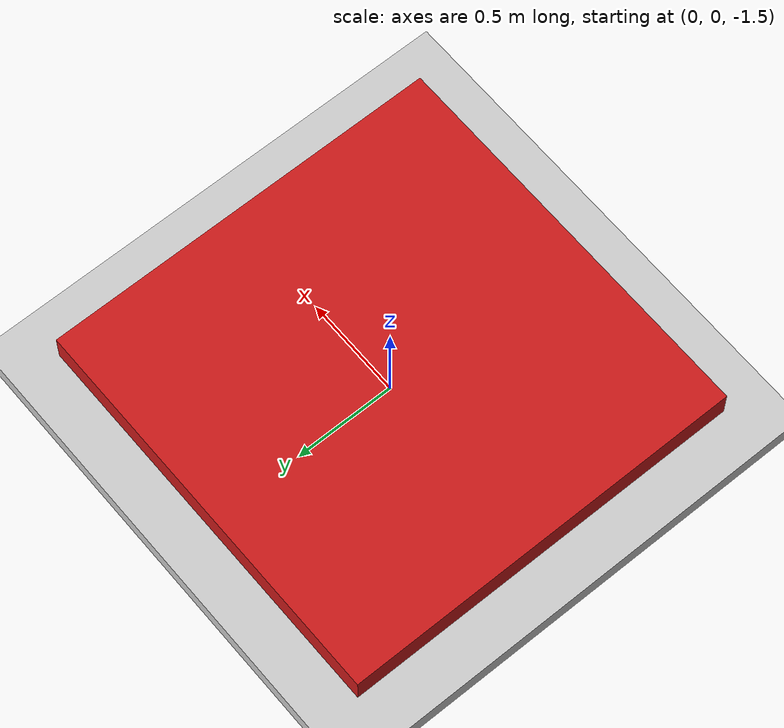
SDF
<?xml version="1.0" ?>
<sdf version="1.6">
  <world name="empty_platform">

    <physics name="4ms" type="dart">
      <max_step_size>0.004</max_step_size>
      <real_time_factor>1.0</real_time_factor>
    </physics>

    <plugin
      filename="ignition-gazebo-physics-system"
      name="ignition::gazebo::systems::Physics">
    </plugin>
    <plugin
      filename="ignition-gazebo-user-commands-system"
      name="ignition::gazebo::systems::UserCommands">
    </plugin>
    <plugin
      filename="ignition-gazebo-sensors-system"
      name="ignition::gazebo::systems::Sensors">
      <render_engine>ogre2</render_engine>
    </plugin>
    <plugin
      filename="ignition-gazebo-air-pressure-system"
      name="ignition::gazebo::systems::AirPressure">
    </plugin>
    <plugin
      filename="ignition-gazebo-altimeter-system"
      name="ignition::gazebo::systems::Altimeter">
    </plugin>
    <plugin
      filename="ignition-gazebo-imu-system"
      name="ignition::gazebo::systems::Imu">
    </plugin>
    <plugin
      filename="ignition-gazebo-magnetometer-system"
      name="ignition::gazebo::systems::Magnetometer">
    </plugin>
    <plugin
      filename="ignition-gazebo-forcetorque-system"
      name="ignition::gazebo::systems::ForceTorque">
    </plugin>
    <plugin
      filename="ignition-gazebo-particle-emitter2-system"
      name="ignition::gazebo::systems::ParticleEmitter2">
    </plugin>
    <plugin
      filename="ignition-gazebo-scene-broadcaster-system"
      name="ignition::gazebo::systems::SceneBroadcaster">
    </plugin>
    <plugin
      filename="ignition-gazebo-contact-system"
      name="ignition::gazebo::systems::Contact">
    </plugin>
    <plugin
      filename="ignition-gazebo-rf-comms-system"
      name="ignition::gazebo::systems::RFComms">
      <range_config>
        <max_range>500000.0</max_range>
        <fading_exponent>2.6</fading_exponent>
        <l0>40</l0>
        <sigma>10.0</sigma>
      </range_config>
      <radio_config>
        <capacity>1000000</capacity>
        <tx_power>20</tx_power>
        <noise_floor>-90</noise_floor>
        <modulation>QPSK</modulation>
      </radio_config>
    </plugin>

    <scene>
      <grid>false</grid>
      <ambient>1.0 1.0 1.0</ambient>
      <background>0.8 0.8 0.8</background>
    </scene>

    <light type="directional" name="sun">
      <cast_shadows>true</cast_shadows>
      <pose>0 0 10 0 0 0</pose>
      <diffuse>0.8 0.8 0.8 1</diffuse>
      <specular>0.2 0.2 0.2 1</specular>
      <attenuation>
        <range>1000</range>
        <constant>0.9</constant>
        <linear>0.01</linear>
        <quadratic>0.001</quadratic>
      </attenuation>
      <direction>-0.5 0.1 -0.9</direction>
    </light>

    <model name="box_to_be_lifted">
      <static>false</static>
      <pose>0 0 -1.4 0 0 0</pose>
      <inertial>
        <mass>2</mass>
        <inertia>
          <ixx>0.1</ixx>
          <ixy>0</ixy>
          <ixz>0</ixz>
          <iyy>0.1</iyy>
          <iyz>0</iyz>
          <izz>1.3333</izz>
        </inertia>
      </inertial>
      <link name="link">
        <collision name="collision">
          <geometry>
            <box>
              <size>2 2 0.2</size>
            </box>
          </geometry>
        </collision>
        <visual name="visual">
          <geometry>
            <box>
              <size>2 2 0.2</size>
            </box>
          </geometry>
          <material>
            <ambient>0.8 0.1 0.1 1</ambient>
            <diffuse>0.8 0.1 0.1 1</diffuse>
            <specular>0.8 0.1 0.1 1</specular>
          </material>
        </visual>
      </link>
    </model>

    <model name="ground_platform">
      <static>true</static>
      <pose>0 0 -1.5 0 0 0</pose>
      <link name="link">
        <collision name="collision">
          <geometry>
            <box>
              <size>20 20 0.1</size>
            </box>
          </geometry>
        </collision>
        <visual name="visual">
          <geometry>
            <box>
              <size>20 20 0.1</size>
            </box>
          </geometry>
          <material>
            <ambient>0.8 0.8 0.8 1</ambient>
            <diffuse>0.8 0.8 0.8 1</diffuse>
            <specular>0.8 0.8 0.8 1</specular>
          </material>
        </visual>
      </link>
    </model>
  </world>
</sdf>
